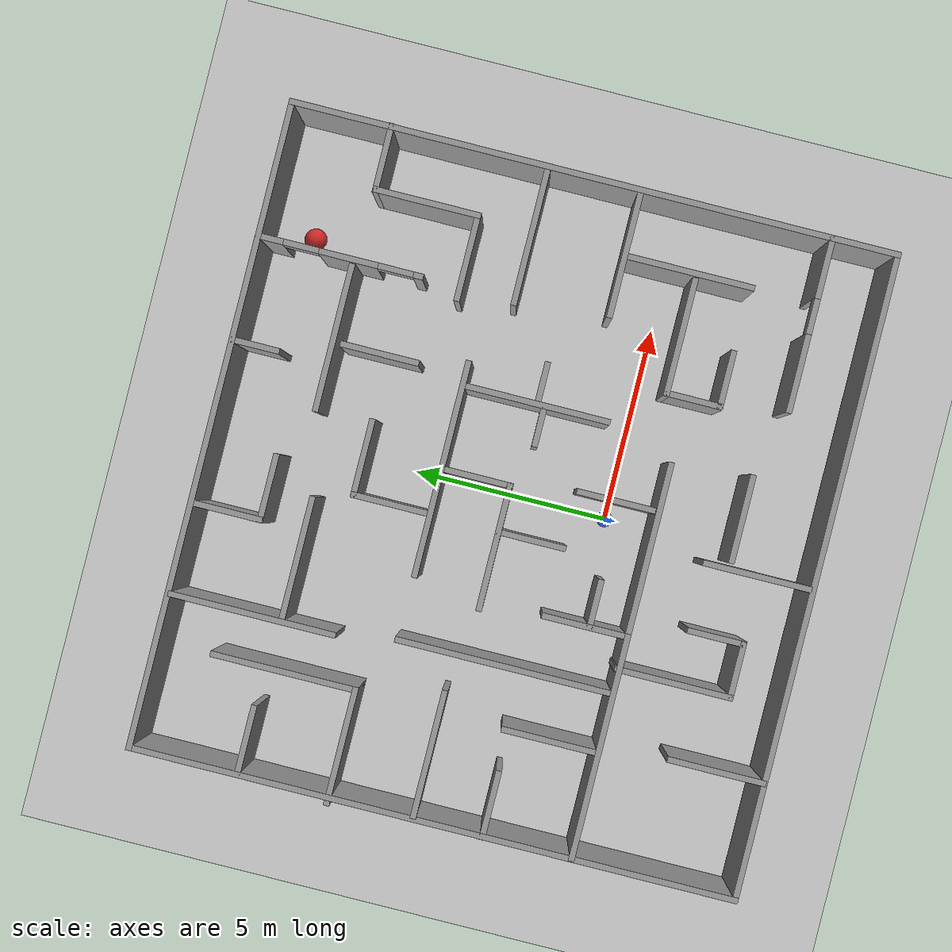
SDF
<sdf version="1.6">
 <world name="default">
  <light name="sun" type="directional">
   <pose>0 0 10 0 -0 0</pose>
   <diffuse>0.8 0.8 0.8 1</diffuse>
   <specular>0.2 0.2 0.2 1</specular>
   <attenuation>
    <range>1000</range>
    <constant>0.9</constant>
    <linear>0.01</linear>
    <quadratic>0.001</quadratic>
   </attenuation>
   <direction>-0.5 0.1 -0.9</direction>
  </light>
  <model name="ground_plane">
   <static>1</static>
   <link name="link">
    <collision name="collision">
     <geometry><plane><normal>0 0 1</normal><size>100 100</size></plane></geometry>
     <surface><friction><ode><mu>100</mu><mu2>50</mu2></ode></friction></surface>
    </collision>
    <visual name="visual">
     <cast_shadows>0</cast_shadows>
     <geometry><plane><normal>0 0 1</normal><size>100 100</size></plane></geometry>
     <material>
      <script><uri>file://media/materials/scripts/gazebo.material</uri><name>Gazebo/Grey</name></script>
     </material>
    </visual>
   </link>
  </model>
  <gravity>0 0 -9.8</gravity>
  <magnetic_field>6e-06 2.3e-05 -4.2e-05</magnetic_field>
  <atmosphere type="adiabatic"/>
  <physics name="default_physics" default="0" type="ode">
   <max_step_size>0.001</max_step_size>
   <real_time_factor>1</real_time_factor>
   <real_time_update_rate>1000</real_time_update_rate>
  </physics>
  <scene><ambient>0.4 0.4 0.4 1</ambient><background>0.7 0.7 0.7 1</background><shadows>1</shadows></scene>
  <audio><device>default</device></audio>
  <spherical_coordinates>
   <surface_model>EARTH_WGS84</surface_model>
   <latitude_deg>0</latitude_deg>
   <longitude_deg>0</longitude_deg>
   <elevation>0</elevation>
   <heading_deg>0</heading_deg>
  </spherical_coordinates>
  <model name="RoboCup SPL Ball">
   <static>0</static>
   <link name="ball">
    <inertial>
     <mass>0.0056</mass>
     <inertia>
      <ixx>2.37e-06</ixx>
      <iyy>2.37e-06</iyy>
      <izz>2.37e-06</izz>
      <ixy>0</ixy>
      <ixz>0</ixz>
      <iyz>0</iyz>
     </inertia>
    </inertial>
    <collision name="collision"><geometry><sphere><radius>0.289568</radius></sphere></geometry></collision>
    <visual name="visual">
     <geometry><sphere><radius>0.289568</radius></sphere></geometry>
     <material>
      <script><uri>file://media/materials/scripts/gazebo.material</uri><name>Gazebo/RedBright</name></script>
     </material>
    </visual>
   </link>
   <pose>5.15164 8.95935 0.289568 0 -0 0</pose>
  </model>
  <model name="mbot">
   <link name="base_footprint">
    <inertial>
     <pose>0.013077 0 0.138462 0 -0 0</pose>
     <mass>1.3</mass>
     <inertia>
      <ixx>0.0360561</ixx>
      <ixy>0</ixy>
      <ixz>-0.00121615</ixz>
      <iyy>0.0387238</iyy>
      <iyz>0</iyz>
      <izz>0.0426727</izz>
     </inertia>
    </inertial>
    <collision name="base_footprint_fixed_joint_lump__base_link_collision">
     <pose>0 0 0.11 0 -0 0</pose>
     <geometry><cylinder><length>0.16</length><radius>0.2</radius></cylinder></geometry>
    </collision>
    <collision name="base_footprint_fixed_joint_lump__camera_link_collision_1">
     <pose>0.17 0 0.21 0 -0 0</pose>
     <geometry><box><size>0.01 0.04 0.04</size></box></geometry>
    </collision>
    <collision name="base_footprint_fixed_joint_lump__pillar_link_collision_2">
     <pose>0 0 0.21 0 -0 0</pose>
     <geometry><cylinder><length>0.1</length><radius>0.01</radius></cylinder></geometry>
    </collision>
    <collision name="base_footprint_fixed_joint_lump__laser_link_collision_3">
     <pose>0 0 0.28 0 -0 0</pose>
     <geometry><cylinder><length>0.06</length><radius>0.05</radius></cylinder></geometry>
    </collision>
    <visual name="base_footprint_visual">
     <geometry><box><size>0.001 0.001 0.001</size></box></geometry>
     <material><script><uri>__default__</uri><name>__default__</name></script></material>
    </visual>
    <visual name="base_footprint_fixed_joint_lump__base_link_visual_1">
     <pose>0 0 0.11 0 -0 0</pose>
     <geometry><cylinder><length>0.16</length><radius>0.2</radius></cylinder></geometry>
     <material>
      <script><name>Gazebo/Blue</name><uri>file://media/materials/scripts/gazebo.material</uri></script>
     </material>
    </visual>
    <visual name="base_footprint_fixed_joint_lump__camera_link_visual_2">
     <pose>0.17 0 0.21 0 -0 0</pose>
     <geometry><box><size>0.01 0.04 0.04</size></box></geometry>
     <material>
      <script><name>Gazebo/Black</name><uri>file://media/materials/scripts/gazebo.material</uri></script>
     </material>
    </visual>
    <visual name="base_footprint_fixed_joint_lump__pillar_link_visual_3">
     <pose>0 0 0.21 0 -0 0</pose>
     <geometry><cylinder><length>0.1</length><radius>0.01</radius></cylinder></geometry>
    </visual>
    <visual name="base_footprint_fixed_joint_lump__laser_link_visual_4">
     <pose>0 0 0.28 0 -0 0</pose>
     <geometry><cylinder><length>0.05</length><radius>0.05</radius></cylinder></geometry>
     <material>
      <script><name>Gazebo/Black</name><uri>file://media/materials/scripts/gazebo.material</uri></script>
     </material>
    </visual>
    <sensor name="camera_node" type="camera">
     <update_rate>20</update_rate>
     <camera name="head">
      <horizontal_fov>1.39626</horizontal_fov>
      <image><width>1280</width><height>720</height><format>R8G8B8</format></image>
      <clip><near>0.02</near><far>300</far></clip>
      <noise><type>gaussian</type><mean>0</mean><stddev>0.007</stddev></noise>
     </camera>
     <plugin name="gazebo_camera" filename="libgazebo_ros_camera.so">
      <alwaysOn>1</alwaysOn>
      <updateRate>0.0</updateRate>
      <cameraName>/camera</cameraName>
      <imageTopicName>image_raw</imageTopicName>
      <cameraInfoTopicName>camera_info</cameraInfoTopicName>
      <frameName>camera_link</frameName>
      <hackBaseline>0.07</hackBaseline>
      <distortionK1>0.0</distortionK1>
      <distortionK2>0.0</distortionK2>
      <distortionK3>0.0</distortionK3>
      <distortionT1>0.0</distortionT1>
      <distortionT2>0.0</distortionT2>
      <robotNamespace>/</robotNamespace>
     </plugin>
     <pose>0.17 0 0.21 0 -0 0</pose>
    </sensor>
    <sensor name="rplidar" type="ray">
     <visualize>0</visualize>
     <update_rate>5.5</update_rate>
     <ray>
      <scan>
       <horizontal>
        <samples>360</samples>
        <resolution>1</resolution>
        <min_angle>-3</min_angle>
        <max_angle>3</max_angle>
       </horizontal>
       <vertical><samples>1</samples><min_angle>0</min_angle><max_angle>0</max_angle></vertical>
      </scan>
      <range><min>0.1</min><max>6</max><resolution>0.01</resolution></range>
      <noise><type>gaussian</type><mean>0</mean><stddev>0.01</stddev></noise>
     </ray>
     <plugin name="gazebo_rplidar" filename="libgazebo_ros_laser.so">
      <topicName>/scan</topicName>
      <frameName>laser_link</frameName>
      <robotNamespace>/</robotNamespace>
     </plugin>
     <pose>0 0 0.28 0 -0 0</pose>
    </sensor>
   </link>
   <link name="back_caster_link">
    <pose>0.18 0 0.015 0 -0 0</pose>
    <inertial>
     <mass>0.2</mass>
     <inertia><ixx>1.8e-05</ixx><ixy>0</ixy><ixz>0</ixz><iyy>1.8e-05</iyy><iyz>0</iyz><izz>1.8e-05</izz></inertia>
    </inertial>
    <collision name="back_caster_link_collision">
     <geometry><sphere><radius>0.015</radius></sphere></geometry>
    </collision>
    <visual name="back_caster_link_visual">
     <geometry><sphere><radius>0.015</radius></sphere></geometry>
     <material>
      <script><name>Gazebo/Black</name><uri>file://media/materials/scripts/gazebo.material</uri></script>
     </material>
    </visual>
   </link>
   <joint name="back_caster_joint" type="revolute">
    <child>back_caster_link</child>
    <parent>base_footprint</parent>
    <axis>
     <xyz>0 1 0</xyz>
     <limit><lower>-1e+16</lower><upper>1e+16</upper></limit>
     <dynamics><spring_reference>0</spring_reference><spring_stiffness>0</spring_stiffness></dynamics>
     <use_parent_model_frame>1</use_parent_model_frame>
    </axis>
   </joint>
   <link name="front_caster_link">
    <pose>-0.18 0 0.015 0 -0 0</pose>
    <inertial>
     <mass>0.2</mass>
     <inertia><ixx>1.8e-05</ixx><ixy>0</ixy><ixz>0</ixz><iyy>1.8e-05</iyy><iyz>0</iyz><izz>1.8e-05</izz></inertia>
    </inertial>
    <collision name="front_caster_link_collision">
     <geometry><sphere><radius>0.015</radius></sphere></geometry>
    </collision>
    <visual name="front_caster_link_visual">
     <geometry><sphere><radius>0.015</radius></sphere></geometry>
     <material>
      <script><name>Gazebo/Black</name><uri>file://media/materials/scripts/gazebo.material</uri></script>
     </material>
    </visual>
   </link>
   <joint name="front_caster_joint" type="revolute">
    <child>front_caster_link</child>
    <parent>base_footprint</parent>
    <axis>
     <xyz>0 1 0</xyz>
     <limit><lower>-1e+16</lower><upper>1e+16</upper></limit>
     <dynamics><spring_reference>0</spring_reference><spring_stiffness>0</spring_stiffness></dynamics>
     <use_parent_model_frame>1</use_parent_model_frame>
    </axis>
   </joint>
   <link name="left_wheel_link">
    <pose>0 0.19 0.06 0 -0 0</pose>
    <inertial>
     <mass>0.2</mass>
     <inertia>
      <ixx>0.000190417</ixx>
      <ixy>0</ixy>
      <ixz>0</ixz>
      <iyy>0.000190417</iyy>
      <iyz>0</iyz>
      <izz>0.00036</izz>
     </inertia>
    </inertial>
    <collision name="left_wheel_link_collision">
     <pose>0 0 0 1.5708 -0 0</pose>
     <geometry><cylinder><length>0.025</length><radius>0.06</radius></cylinder></geometry>
    </collision>
    <visual name="left_wheel_link_visual">
     <pose>0 0 0 1.5708 -0 0</pose>
     <geometry><cylinder><length>0.025</length><radius>0.06</radius></cylinder></geometry>
     <material>
      <script><name>Gazebo/Gray</name><uri>file://media/materials/scripts/gazebo.material</uri></script>
     </material>
    </visual>
   </link>
   <joint name="left_wheel_joint" type="revolute">
    <child>left_wheel_link</child>
    <parent>base_footprint</parent>
    <axis>
     <xyz>0 1 0</xyz>
     <limit><lower>-1e+16</lower><upper>1e+16</upper></limit>
     <dynamics><spring_reference>0</spring_reference><spring_stiffness>0</spring_stiffness></dynamics>
     <use_parent_model_frame>1</use_parent_model_frame>
    </axis>
   </joint>
   <link name="right_wheel_link">
    <pose>0 -0.19 0.06 0 -0 0</pose>
    <inertial>
     <mass>0.2</mass>
     <inertia>
      <ixx>0.000190417</ixx>
      <ixy>0</ixy>
      <ixz>0</ixz>
      <iyy>0.000190417</iyy>
      <iyz>0</iyz>
      <izz>0.00036</izz>
     </inertia>
    </inertial>
    <collision name="right_wheel_link_collision">
     <pose>0 0 0 1.5708 -0 0</pose>
     <geometry><cylinder><length>0.025</length><radius>0.06</radius></cylinder></geometry>
    </collision>
    <visual name="right_wheel_link_visual">
     <pose>0 0 0 1.5708 -0 0</pose>
     <geometry><cylinder><length>0.025</length><radius>0.06</radius></cylinder></geometry>
     <material>
      <script><name>Gazebo/Gray</name><uri>file://media/materials/scripts/gazebo.material</uri></script>
     </material>
    </visual>
   </link>
   <joint name="right_wheel_joint" type="revolute">
    <child>right_wheel_link</child>
    <parent>base_footprint</parent>
    <axis>
     <xyz>0 1 0</xyz>
     <limit><lower>-1e+16</lower><upper>1e+16</upper></limit>
     <dynamics><spring_reference>0</spring_reference><spring_stiffness>0</spring_stiffness></dynamics>
     <use_parent_model_frame>1</use_parent_model_frame>
    </axis>
   </joint>
   <static>0</static>
   <plugin name="differential_drive_controller" filename="libgazebo_ros_diff_drive.so">
    <rosDebugLevel>Debug</rosDebugLevel>
    <publishWheelTF>1</publishWheelTF>
    <robotNamespace>/</robotNamespace>
    <publishTf>1</publishTf>
    <publishWheelJointState>1</publishWheelJointState>
    <alwaysOn>1</alwaysOn>
    <updateRate>100.0</updateRate>
    <legacyMode>1</legacyMode>
    <leftJoint>left_wheel_joint</leftJoint>
    <rightJoint>right_wheel_joint</rightJoint>
    <wheelSeparation>0.38</wheelSeparation>
    <wheelDiameter>0.12</wheelDiameter>
    <broadcastTF>1</broadcastTF>
    <wheelTorque>30</wheelTorque>
    <wheelAcceleration>1.8</wheelAcceleration>
    <commandTopic>cmd_vel</commandTopic>
    <odometryFrame>odom</odometryFrame>
    <odometryTopic>odom</odometryTopic>
    <robotBaseFrame>base_footprint</robotBaseFrame>
   </plugin>
   <pose>0.00606 0.006596 0 -1e-06 -0 0.002871</pose>
  </model>
  <model name="maze">
   <pose>-0.169978 2.39175 0 0 -0 0</pose>
   <link name="Wall_10">
    <collision name="Wall_10_Collision">
     <geometry><box><size>15.5 0.15 2.5</size></box></geometry>
     <pose>0 0 1.25 0 -0 0</pose>
    </collision>
    <visual name="Wall_10_Visual">
     <pose>0 0 1.25 0 -0 0</pose>
     <geometry><box><size>15.5 0.15 2.5</size></box></geometry>
     <material>
      <script><uri>file://media/materials/scripts/gazebo.material</uri><name>Gazebo/Grey</name></script>
      <ambient>1 1 1 1</ambient>
     </material>
     <meta><layer>0</layer></meta>
    </visual>
    <pose>8.23201 0 0 0 -0 1.5708</pose>
   </link>
   <link name="Wall_100">
    <collision name="Wall_100_Collision">
     <geometry><box><size>1 0.15 2.5</size></box></geometry>
     <pose>0 0 1.25 0 -0 0</pose>
    </collision>
    <visual name="Wall_100_Visual">
     <pose>0 0 1.25 0 -0 0</pose>
     <geometry><box><size>1 0.15 2.5</size></box></geometry>
     <material>
      <script><uri>file://media/materials/scripts/gazebo.material</uri><name>Gazebo/Grey</name></script>
      <ambient>1 1 1 1</ambient>
     </material>
     <meta><layer>0</layer></meta>
    </visual>
    <pose>3.0779 0.015694 0 0 -0 3.14159</pose>
   </link>
   <link name="Wall_102">
    <collision name="Wall_102_Collision">
     <geometry><box><size>1.75 0.15 2.5</size></box></geometry>
     <pose>0 0 1.25 0 -0 0</pose>
    </collision>
    <visual name="Wall_102_Visual">
     <pose>0 0 1.25 0 -0 0</pose>
     <geometry><box><size>1.75 0.15 2.5</size></box></geometry>
     <material>
      <script><uri>file://media/materials/scripts/gazebo.material</uri><name>Gazebo/Grey</name></script>
      <ambient>1 1 1 1</ambient>
     </material>
     <meta><layer>0</layer></meta>
    </visual>
    <pose>-7.32587 -1.27639 0 0 -0 0</pose>
   </link>
   <link name="Wall_104">
    <collision name="Wall_104_Collision">
     <geometry><box><size>2 0.15 2.5</size></box></geometry>
     <pose>0 0 1.25 0 -0 0</pose>
    </collision>
    <visual name="Wall_104_Visual">
     <pose>0 0 1.25 0 -0 0</pose>
     <geometry><box><size>2 0.15 2.5</size></box></geometry>
     <material>
      <script><uri>file://media/materials/scripts/gazebo.material</uri><name>Gazebo/Grey</name></script>
      <ambient>1 1 1 1</ambient>
     </material>
     <meta><layer>0</layer></meta>
    </visual>
    <pose>0.672614 -2.4475 0 0 -0 -1.5708</pose>
   </link>
   <link name="Wall_106">
    <collision name="Wall_106_Collision">
     <geometry><box><size>1 0.15 2.5</size></box></geometry>
     <pose>0 0 1.25 0 -0 0</pose>
    </collision>
    <visual name="Wall_106_Visual">
     <pose>0 0 1.25 0 -0 0</pose>
     <geometry><box><size>1 0.15 2.5</size></box></geometry>
     <material>
      <script><uri>file://media/materials/scripts/gazebo.material</uri><name>Gazebo/Grey</name></script>
      <ambient>1 1 1 1</ambient>
     </material>
     <meta><layer>0</layer></meta>
    </visual>
    <pose>1.97039 -0.168889 0 0 -0 3.14159</pose>
   </link>
   <link name="Wall_12">
    <collision name="Wall_12_Collision">
     <geometry><box><size>5.75 0.15 2.5</size></box></geometry>
     <pose>0 0 1.25 0 -0 0</pose>
    </collision>
    <visual name="Wall_12_Visual">
     <pose>0 0 1.25 0 -0 0</pose>
     <geometry><box><size>5.75 0.15 2.5</size></box></geometry>
     <material>
      <script><uri>file://media/materials/scripts/gazebo.material</uri><name>Gazebo/Grey</name></script>
      <ambient>1 1 1 1</ambient>
     </material>
     <meta><layer>0</layer></meta>
    </visual>
    <pose>-5.29534 -3.53435 0 0 -0 0</pose>
   </link>
   <link name="Wall_14">
    <pose>4.84302 5.61866 0 0 -0 -1.5708</pose>
    <visual name="Wall_14_Visual_0">
     <pose>-1.77183 0 1.25 0 -0 0</pose>
     <geometry><box><size>0.70634 0.15 2.5</size></box></geometry>
     <material>
      <script><uri>file://media/materials/scripts/gazebo.material</uri><name>Gazebo/Grey</name></script>
      <ambient>1 1 1 1</ambient>
     </material>
     <meta><layer>0</layer></meta>
    </visual>
    <collision name="Wall_14_Collision_0">
     <geometry><box><size>0.70634 0.15 2.5</size></box></geometry>
     <pose>-1.77183 0 1.25 0 -0 0</pose>
    </collision>
    <visual name="Wall_14_Visual_1">
     <pose>0.229578 0 1.25 0 -0 0</pose>
     <geometry><box><size>1.49648 0.15 2.5</size></box></geometry>
     <material>
      <script><uri>file://media/materials/scripts/gazebo.material</uri><name>Gazebo/Grey</name></script>
      <ambient>1 1 1 1</ambient>
     </material>
     <meta><layer>0</layer></meta>
    </visual>
    <collision name="Wall_14_Collision_1">
     <geometry><box><size>1.49648 0.15 2.5</size></box></geometry>
     <pose>0.229578 0 1.25 0 -0 0</pose>
    </collision>
    <visual name="Wall_14_Visual_2">
     <pose>2.00141 0 1.25 0 -0 0</pose>
     <geometry><box><size>0.247184 0.15 2.5</size></box></geometry>
     <material>
      <script><uri>file://media/materials/scripts/gazebo.material</uri><name>Gazebo/Grey</name></script>
      <ambient>1 1 1 1</ambient>
     </material>
     <meta><layer>0</layer></meta>
    </visual>
    <collision name="Wall_14_Collision_2">
     <geometry><box><size>0.247184 0.15 2.5</size></box></geometry>
     <pose>2.00141 0 1.25 0 -0 0</pose>
    </collision>
    <visual name="Wall_14_Visual_3">
     <pose>-0.96866 0 2.25 0 -0 0</pose>
     <geometry><box><size>0.9 0.15 0.5</size></box></geometry>
     <material>
      <script><uri>file://media/materials/scripts/gazebo.material</uri><name>Gazebo/Grey</name></script>
      <ambient>1 1 1 1</ambient>
     </material>
     <meta><layer>0</layer></meta>
    </visual>
    <collision name="Wall_14_Collision_3">
     <geometry><box><size>0.9 0.15 0.5</size></box></geometry>
     <pose>-0.96866 0 2.25 0 -0 0</pose>
    </collision>
    <visual name="Wall_14_Visual_4">
     <pose>1.42782 0 2.25 0 -0 0</pose>
     <geometry><box><size>0.9 0.15 0.5</size></box></geometry>
     <material>
      <script><uri>file://media/materials/scripts/gazebo.material</uri><name>Gazebo/Grey</name></script>
      <ambient>1 1 1 1</ambient>
     </material>
     <meta><layer>0</layer></meta>
    </visual>
    <collision name="Wall_14_Collision_4">
     <geometry><box><size>0.9 0.15 0.5</size></box></geometry>
     <pose>1.42782 0 2.25 0 -0 0</pose>
    </collision>
   </link>
   <link name="Wall_16">
    <collision name="Wall_16_Collision">
     <geometry><box><size>3.25 0.15 2.5</size></box></geometry>
     <pose>0 0 1.25 0 -0 0</pose>
    </collision>
    <visual name="Wall_16_Visual">
     <pose>0 0 1.25 0 -0 0</pose>
     <geometry><box><size>3.25 0.15 2.5</size></box></geometry>
     <material>
      <script><uri>file://media/materials/scripts/gazebo.material</uri><name>Gazebo/Grey</name></script>
      <ambient>1 1 1 1</ambient>
     </material>
     <meta><layer>0</layer></meta>
    </visual>
    <pose>6.6186 -1.17597 0 0 -0 3.14159</pose>
   </link>
   <link name="Wall_18">
    <collision name="Wall_18_Collision">
     <geometry><box><size>4.25 0.15 2.5</size></box></geometry>
     <pose>0 0 1.25 0 -0 0</pose>
    </collision>
    <visual name="Wall_18_Visual">
     <pose>0 0 1.25 0 -0 0</pose>
     <geometry><box><size>4.25 0.15 2.5</size></box></geometry>
     <material>
      <script><uri>file://media/materials/scripts/gazebo.material</uri><name>Gazebo/Grey</name></script>
      <ambient>1 1 1 1</ambient>
     </material>
     <meta><layer>0</layer></meta>
    </visual>
    <pose>-4.21389 5.5479 0 0 -0 -1.5708</pose>
   </link>
   <link name="Wall_23">
    <collision name="Wall_23_Collision">
     <geometry><box><size>1.75 0.15 2.5</size></box></geometry>
     <pose>0 0 1.25 0 -0 0</pose>
    </collision>
    <visual name="Wall_23_Visual">
     <pose>0 0 1.25 0 -0 0</pose>
     <geometry><box><size>1.75 0.15 2.5</size></box></geometry>
     <material>
      <script><uri>file://media/materials/scripts/gazebo.material</uri><name>Gazebo/Grey</name></script>
      <ambient>1 1 1 1</ambient>
     </material>
     <meta><layer>0</layer></meta>
    </visual>
    <pose>-7.2358 4.94106 0 0 -0 0</pose>
   </link>
   <link name="Wall_26">
    <collision name="Wall_26_Collision">
     <geometry><box><size>3.25 0.15 2.5</size></box></geometry>
     <pose>0 0 1.25 0 -0 0</pose>
    </collision>
    <visual name="Wall_26_Visual">
     <pose>0 0 1.25 0 -0 0</pose>
     <geometry><box><size>3.25 0.15 2.5</size></box></geometry>
     <material>
      <script><uri>file://media/materials/scripts/gazebo.material</uri><name>Gazebo/Grey</name></script>
      <ambient>1 1 1 1</ambient>
     </material>
     <meta><layer>0</layer></meta>
    </visual>
    <pose>-6.4858 0.490946 0 0 -0 0</pose>
   </link>
   <link name="Wall_28">
    <collision name="Wall_28_Collision">
     <geometry><box><size>3.75 0.15 2.5</size></box></geometry>
     <pose>0 0 1.25 0 -0 0</pose>
    </collision>
    <visual name="Wall_28_Visual">
     <pose>0 0 1.25 0 -0 0</pose>
     <geometry><box><size>3.75 0.15 2.5</size></box></geometry>
     <material>
      <script><uri>file://media/materials/scripts/gazebo.material</uri><name>Gazebo/Grey</name></script>
      <ambient>1 1 1 1</ambient>
     </material>
     <meta><layer>0</layer></meta>
    </visual>
    <pose>2.86725 5.2647 0 0 -0 3.14159</pose>
   </link>
   <link name="Wall_30">
    <collision name="Wall_30_Collision">
     <geometry><box><size>3.25 0.15 2.5</size></box></geometry>
     <pose>0 0 1.25 0 -0 0</pose>
    </collision>
    <visual name="Wall_30_Visual">
     <pose>0 0 1.25 0 -0 0</pose>
     <geometry><box><size>3.25 0.15 2.5</size></box></geometry>
     <material>
      <script><uri>file://media/materials/scripts/gazebo.material</uri><name>Gazebo/Grey</name></script>
      <ambient>1 1 1 1</ambient>
     </material>
     <meta><layer>0</layer></meta>
    </visual>
    <pose>6.56867 -2.8391 0 0 -0 -1.5708</pose>
   </link>
   <link name="Wall_32">
    <collision name="Wall_32_Collision">
     <geometry><box><size>2.5 0.15 2.5</size></box></geometry>
     <pose>0 0 1.25 0 -0 0</pose>
    </collision>
    <visual name="Wall_32_Visual">
     <pose>0 0 1.25 0 -0 0</pose>
     <geometry><box><size>2.5 0.15 2.5</size></box></geometry>
     <material>
      <script><uri>file://media/materials/scripts/gazebo.material</uri><name>Gazebo/Grey</name></script>
      <ambient>1 1 1 1</ambient>
     </material>
     <meta><layer>0</layer></meta>
    </visual>
    <pose>-5.16345 -6.46563 0 0 -0 1.5708</pose>
   </link>
   <link name="Wall_34">
    <pose>6.05234 -6.0224 0 0 -0 3.14159</pose>
    <visual name="Wall_34_Visual_0">
     <pose>-1.44843 0 1.25 0 -0 0</pose>
     <geometry><box><size>1.60315 0.15 2.5</size></box></geometry>
     <material>
      <script><uri>file://media/materials/scripts/gazebo.material</uri><name>Gazebo/Grey</name></script>
      <ambient>1 1 1 1</ambient>
     </material>
     <meta><layer>0</layer></meta>
    </visual>
    <collision name="Wall_34_Collision_0">
     <geometry><box><size>1.60315 0.15 2.5</size></box></geometry>
     <pose>-1.44843 0 1.25 0 -0 0</pose>
    </collision>
    <visual name="Wall_34_Visual_1">
     <pose>1.25157 0 1.25 0 -0 0</pose>
     <geometry><box><size>1.99686 0.15 2.5</size></box></geometry>
     <material>
      <script><uri>file://media/materials/scripts/gazebo.material</uri><name>Gazebo/Grey</name></script>
      <ambient>1 1 1 1</ambient>
     </material>
     <meta><layer>0</layer></meta>
    </visual>
    <collision name="Wall_34_Collision_1">
     <geometry><box><size>1.99686 0.15 2.5</size></box></geometry>
     <pose>1.25157 0 1.25 0 -0 0</pose>
    </collision>
    <visual name="Wall_34_Visual_2">
     <pose>-0.196855 0 2.25 0 -0 0</pose>
     <geometry><box><size>0.9 0.15 0.5</size></box></geometry>
     <material>
      <script><uri>file://media/materials/scripts/gazebo.material</uri><name>Gazebo/Grey</name></script>
      <ambient>1 1 1 1</ambient>
     </material>
     <meta><layer>0</layer></meta>
    </visual>
    <collision name="Wall_34_Collision_2">
     <geometry><box><size>0.9 0.15 0.5</size></box></geometry>
     <pose>-0.196855 0 2.25 0 -0 0</pose>
    </collision>
   </link>
   <link name="Wall_36">
    <collision name="Wall_36_Collision">
     <geometry><box><size>2.75 0.15 2.5</size></box></geometry>
     <pose>0 0 1.25 0 -0 0</pose>
    </collision>
    <visual name="Wall_36_Visual">
     <pose>0 0 1.25 0 -0 0</pose>
     <geometry><box><size>2.75 0.15 2.5</size></box></geometry>
     <material>
      <script><uri>file://media/materials/scripts/gazebo.material</uri><name>Gazebo/Grey</name></script>
      <ambient>1 1 1 1</ambient>
     </material>
     <meta><layer>0</layer></meta>
    </visual>
    <pose>-0.268326 -6.25971 0 0 -0 1.5708</pose>
   </link>
   <link name="Wall_38">
    <collision name="Wall_38_Collision">
     <geometry><box><size>5.5 0.15 2.5</size></box></geometry>
     <pose>0 0 1.25 0 -0 0</pose>
    </collision>
    <visual name="Wall_38_Visual">
     <pose>0 0 1.25 0 -0 0</pose>
     <geometry><box><size>5.5 0.15 2.5</size></box></geometry>
     <material>
      <script><uri>file://media/materials/scripts/gazebo.material</uri><name>Gazebo/Grey</name></script>
      <ambient>1 1 1 1</ambient>
     </material>
     <meta><layer>0</layer></meta>
    </visual>
    <pose>0.383895 1.90689 0 0 -0 0</pose>
   </link>
   <link name="Wall_42">
    <collision name="Wall_42_Collision">
     <geometry><box><size>1.75 0.15 2.5</size></box></geometry>
     <pose>0 0 1.25 0 -0 0</pose>
    </collision>
    <visual name="Wall_42_Visual">
     <pose>0 0 1.25 0 -0 0</pose>
     <geometry><box><size>1.75 0.15 2.5</size></box></geometry>
     <material>
      <script><uri>file://media/materials/scripts/gazebo.material</uri><name>Gazebo/Grey</name></script>
      <ambient>1 1 1 1</ambient>
     </material>
     <meta><layer>0</layer></meta>
    </visual>
    <pose>0.398429 0.974712 0 0 -0 -1.5708</pose>
   </link>
   <link name="Wall_43">
    <collision name="Wall_43_Collision">
     <geometry><box><size>3.25 0.15 2.5</size></box></geometry>
     <pose>0 0 1.25 0 -0 0</pose>
    </collision>
    <visual name="Wall_43_Visual">
     <pose>0 0 1.25 0 -0 0</pose>
     <geometry><box><size>3.25 0.15 2.5</size></box></geometry>
     <material>
      <script><uri>file://media/materials/scripts/gazebo.material</uri><name>Gazebo/Grey</name></script>
      <ambient>1 1 1 1</ambient>
     </material>
     <meta><layer>0</layer></meta>
    </visual>
    <pose>-1.15157 0.174712 0 0 -0 3.14159</pose>
   </link>
   <link name="Wall_45">
    <collision name="Wall_45_Collision">
     <geometry><box><size>2.25 0.15 2.5</size></box></geometry>
     <pose>0 0 1.25 0 -0 0</pose>
    </collision>
    <visual name="Wall_45_Visual">
     <pose>0 0 1.25 0 -0 0</pose>
     <geometry><box><size>2.25 0.15 2.5</size></box></geometry>
     <material>
      <script><uri>file://media/materials/scripts/gazebo.material</uri><name>Gazebo/Grey</name></script>
      <ambient>1 1 1 1</ambient>
     </material>
     <meta><layer>0</layer></meta>
    </visual>
    <pose>-2.49534 -2.48435 0 0 -0 1.5708</pose>
   </link>
   <link name="Wall_47">
    <collision name="Wall_47_Collision">
     <geometry><box><size>4.5 0.15 2.5</size></box></geometry>
     <pose>0 0 1.25 0 -0 0</pose>
    </collision>
    <visual name="Wall_47_Visual">
     <pose>0 0 1.25 0 -0 0</pose>
     <geometry><box><size>4.5 0.15 2.5</size></box></geometry>
     <material>
      <script><uri>file://media/materials/scripts/gazebo.material</uri><name>Gazebo/Grey</name></script>
      <ambient>1 1 1 1</ambient>
     </material>
     <meta><layer>0</layer></meta>
    </visual>
    <pose>-0.320341 -3.53435 0 0 -0 0</pose>
   </link>
   <link name="Wall_49">
    <collision name="Wall_49_Collision">
     <geometry><box><size>3.75 0.15 2.5</size></box></geometry>
     <pose>0 0 1.25 0 -0 0</pose>
    </collision>
    <visual name="Wall_49_Visual">
     <pose>0 0 1.25 0 -0 0</pose>
     <geometry><box><size>3.75 0.15 2.5</size></box></geometry>
     <material>
      <script><uri>file://media/materials/scripts/gazebo.material</uri><name>Gazebo/Grey</name></script>
      <ambient>1 1 1 1</ambient>
     </material>
     <meta><layer>0</layer></meta>
    </visual>
    <pose>2.50915 0.045069 0 0 -0 -1.5708</pose>
   </link>
   <link name="Wall_51">
    <collision name="Wall_51_Collision">
     <geometry><box><size>2.5 0.15 2.5</size></box></geometry>
     <pose>0 0 1.25 0 -0 0</pose>
    </collision>
    <visual name="Wall_51_Visual">
     <pose>0 0 1.25 0 -0 0</pose>
     <geometry><box><size>2.5 0.15 2.5</size></box></geometry>
     <material>
      <script><uri>file://media/materials/scripts/gazebo.material</uri><name>Gazebo/Grey</name></script>
      <ambient>1 1 1 1</ambient>
     </material>
     <meta><layer>0</layer></meta>
    </visual>
    <pose>-5.44125 -2.3271 0 0 -0 1.5708</pose>
   </link>
   <link name="Wall_55">
    <collision name="Wall_55_Collision">
     <geometry><box><size>3.25 0.15 2.5</size></box></geometry>
     <pose>0 0 1.25 0 -0 0</pose>
    </collision>
    <visual name="Wall_55_Visual">
     <pose>0 0 1.25 0 -0 0</pose>
     <geometry><box><size>3.25 0.15 2.5</size></box></geometry>
     <material>
      <script><uri>file://media/materials/scripts/gazebo.material</uri><name>Gazebo/Grey</name></script>
      <ambient>1 1 1 1</ambient>
     </material>
     <meta><layer>0</layer></meta>
    </visual>
    <pose>-2.65553 4.80704 0 0 -0 0</pose>
   </link>
   <link name="Wall_58">
    <collision name="Wall_58_Collision">
     <geometry><box><size>3.5 0.15 2.5</size></box></geometry>
     <pose>0 0 1.25 0 -0 0</pose>
    </collision>
    <visual name="Wall_58_Visual">
     <pose>0 0 1.25 0 -0 0</pose>
     <geometry><box><size>3.5 0.15 2.5</size></box></geometry>
     <material>
      <script><uri>file://media/materials/scripts/gazebo.material</uri><name>Gazebo/Grey</name></script>
      <ambient>1 1 1 1</ambient>
     </material>
     <meta><layer>0</layer></meta>
    </visual>
    <pose>6.46456 1.18025 0 0 -0 3.14159</pose>
   </link>
   <link name="Wall_6">
    <collision name="Wall_6_Collision">
     <geometry><box><size>16.5 0.15 2.5</size></box></geometry>
     <pose>0 0 1.25 0 -0 0</pose>
    </collision>
    <visual name="Wall_6_Visual">
     <pose>0 0 1.25 0 -0 0</pose>
     <geometry><box><size>16.5 0.15 2.5</size></box></geometry>
     <material>
      <script><uri>file://media/materials/scripts/gazebo.material</uri><name>Gazebo/Grey</name></script>
      <ambient>1 1 1 1</ambient>
     </material>
     <meta><layer>0</layer></meta>
    </visual>
    <pose>0.057011 7.675 0 0 -0 0</pose>
   </link>
   <link name="Wall_60">
    <collision name="Wall_60_Collision">
     <geometry><box><size>1.75 0.15 2.5</size></box></geometry>
     <pose>0 0 1.25 0 -0 0</pose>
    </collision>
    <visual name="Wall_60_Visual">
     <pose>0 0 1.25 0 -0 0</pose>
     <geometry><box><size>1.75 0.15 2.5</size></box></geometry>
     <material>
      <script><uri>file://media/materials/scripts/gazebo.material</uri><name>Gazebo/Grey</name></script>
      <ambient>1 1 1 1</ambient>
     </material>
     <meta><layer>0</layer></meta>
    </visual>
    <pose>-0.766948 -0.660227 0 0 -0 -1.5708</pose>
   </link>
   <link name="Wall_62">
    <collision name="Wall_62_Collision">
     <geometry><box><size>1.25 0.15 2.5</size></box></geometry>
     <pose>0 0 1.25 0 -0 0</pose>
    </collision>
    <visual name="Wall_62_Visual">
     <pose>0 0 1.25 0 -0 0</pose>
     <geometry><box><size>1.25 0.15 2.5</size></box></geometry>
     <material>
      <script><uri>file://media/materials/scripts/gazebo.material</uri><name>Gazebo/Grey</name></script>
      <ambient>1 1 1 1</ambient>
     </material>
     <meta><layer>0</layer></meta>
    </visual>
    <pose>-1.90553 -2.56899 0 0 -0 0</pose>
   </link>
   <link name="Wall_66">
    <collision name="Wall_66_Collision">
     <geometry><box><size>2 0.15 2.5</size></box></geometry>
     <pose>0 0 1.25 0 -0 0</pose>
    </collision>
    <visual name="Wall_66_Visual">
     <pose>0 0 1.25 0 -0 0</pose>
     <geometry><box><size>2 0.15 2.5</size></box></geometry>
     <material>
      <script><uri>file://media/materials/scripts/gazebo.material</uri><name>Gazebo/Grey</name></script>
      <ambient>1 1 1 1</ambient>
     </material>
     <meta><layer>0</layer></meta>
    </visual>
    <pose>-0.754728 2.92274 0 0 -0 1.5708</pose>
   </link>
   <link name="Wall_67">
    <collision name="Wall_67_Collision">
     <geometry><box><size>2 0.15 2.5</size></box></geometry>
     <pose>0 0 1.25 0 -0 0</pose>
    </collision>
    <visual name="Wall_67_Visual">
     <pose>0 0 1.25 0 -0 0</pose>
     <geometry><box><size>2 0.15 2.5</size></box></geometry>
     <material>
      <script><uri>file://media/materials/scripts/gazebo.material</uri><name>Gazebo/Grey</name></script>
      <ambient>1 1 1 1</ambient>
     </material>
     <meta><layer>0</layer></meta>
    </visual>
    <pose>0.170272 3.84774 0 0 -0 0</pose>
   </link>
   <link name="Wall_70">
    <collision name="Wall_70_Collision">
     <geometry><box><size>3 0.15 2.5</size></box></geometry>
     <pose>0 0 1.25 0 -0 0</pose>
    </collision>
    <visual name="Wall_70_Visual">
     <pose>0 0 1.25 0 -0 0</pose>
     <geometry><box><size>3 0.15 2.5</size></box></geometry>
     <material>
      <script><uri>file://media/materials/scripts/gazebo.material</uri><name>Gazebo/Grey</name></script>
      <ambient>1 1 1 1</ambient>
     </material>
     <meta><layer>0</layer></meta>
    </visual>
    <pose>-3.32278 -4.91515 0 0 -0 -1.5708</pose>
   </link>
   <link name="Wall_73">
    <collision name="Wall_73_Collision">
     <geometry><box><size>2.25 0.15 2.5</size></box></geometry>
     <pose>0 0 1.25 0 -0 0</pose>
    </collision>
    <visual name="Wall_73_Visual">
     <pose>0 0 1.25 0 -0 0</pose>
     <geometry><box><size>2.25 0.15 2.5</size></box></geometry>
     <material>
      <script><uri>file://media/materials/scripts/gazebo.material</uri><name>Gazebo/Grey</name></script>
      <ambient>1 1 1 1</ambient>
     </material>
     <meta><layer>0</layer></meta>
    </visual>
    <pose>1.00181 -5.55895 0 0 -0 0</pose>
   </link>
   <link name="Wall_75">
    <collision name="Wall_75_Collision">
     <geometry><box><size>1.75 0.15 2.5</size></box></geometry>
     <pose>0 0 1.25 0 -0 0</pose>
    </collision>
    <visual name="Wall_75_Visual">
     <pose>0 0 1.25 0 -0 0</pose>
     <geometry><box><size>1.75 0.15 2.5</size></box></geometry>
     <material>
      <script><uri>file://media/materials/scripts/gazebo.material</uri><name>Gazebo/Grey</name></script>
      <ambient>1 1 1 1</ambient>
     </material>
     <meta><layer>0</layer></meta>
    </visual>
    <pose>7.4452 5.16178 0 0 -0 3.14159</pose>
   </link>
   <link name="Wall_76">
    <collision name="Wall_76_Collision">
     <geometry><box><size>2.75 0.15 2.5</size></box></geometry>
     <pose>0 0 1.25 0 -0 0</pose>
    </collision>
    <visual name="Wall_76_Visual">
     <pose>0 0 1.25 0 -0 0</pose>
     <geometry><box><size>2.75 0.15 2.5</size></box></geometry>
     <material>
      <script><uri>file://media/materials/scripts/gazebo.material</uri><name>Gazebo/Grey</name></script>
      <ambient>1 1 1 1</ambient>
     </material>
     <meta><layer>0</layer></meta>
    </visual>
    <pose>6.6452 3.86178 0 0 -0 -1.5708</pose>
   </link>
   <link name="Wall_77">
    <collision name="Wall_77_Collision">
     <geometry><box><size>2.25 0.15 2.5</size></box></geometry>
     <pose>0 0 1.25 0 -0 0</pose>
    </collision>
    <visual name="Wall_77_Visual">
     <pose>0 0 1.25 0 -0 0</pose>
     <geometry><box><size>2.25 0.15 2.5</size></box></geometry>
     <material>
      <script><uri>file://media/materials/scripts/gazebo.material</uri><name>Gazebo/Grey</name></script>
      <ambient>1 1 1 1</ambient>
     </material>
     <meta><layer>0</layer></meta>
    </visual>
    <pose>5.5952 2.56178 0 0 -0 3.14159</pose>
   </link>
   <link name="Wall_8">
    <collision name="Wall_8_Collision">
     <geometry><box><size>15.5 0.15 2.5</size></box></geometry>
     <pose>0 0 1.25 0 -0 0</pose>
    </collision>
    <visual name="Wall_8_Visual">
     <pose>0 0 1.25 0 -0 0</pose>
     <geometry><box><size>15.5 0.15 2.5</size></box></geometry>
     <material>
      <script><uri>file://media/materials/scripts/gazebo.material</uri><name>Gazebo/Grey</name></script>
      <ambient>1 1 1 1</ambient>
     </material>
     <meta><layer>0</layer></meta>
    </visual>
    <pose>-8.11799 0 0 0 -0 -1.5708</pose>
   </link>
   <link name="Wall_80">
    <collision name="Wall_80_Collision">
     <geometry><box><size>3 0.15 2.5</size></box></geometry>
     <pose>0 0 1.25 0 -0 0</pose>
    </collision>
    <visual name="Wall_80_Visual">
     <pose>0 0 1.25 0 -0 0</pose>
     <geometry><box><size>3 0.15 2.5</size></box></geometry>
     <material>
      <script><uri>file://media/materials/scripts/gazebo.material</uri><name>Gazebo/Grey</name></script>
      <ambient>1 1 1 1</ambient>
     </material>
     <meta><layer>0</layer></meta>
    </visual>
    <pose>-6.8202 2.63279 0 0 -0 0</pose>
   </link>
   <link name="Wall_81">
    <collision name="Wall_81_Collision">
     <geometry><box><size>3.75 0.15 2.5</size></box></geometry>
     <pose>0 0 1.25 0 -0 0</pose>
    </collision>
    <visual name="Wall_81_Visual">
     <pose>0 0 1.25 0 -0 0</pose>
     <geometry><box><size>3.75 0.15 2.5</size></box></geometry>
     <material>
      <script><uri>file://media/materials/scripts/gazebo.material</uri><name>Gazebo/Grey</name></script>
      <ambient>1 1 1 1</ambient>
     </material>
     <meta><layer>0</layer></meta>
    </visual>
    <pose>-5.3952 4.43279 0 0 -0 1.5708</pose>
   </link>
   <link name="Wall_83">
    <collision name="Wall_83_Collision">
     <geometry><box><size>3 0.15 2.5</size></box></geometry>
     <pose>0 0 1.25 0 -0 0</pose>
    </collision>
    <visual name="Wall_83_Visual">
     <pose>0 0 1.25 0 -0 0</pose>
     <geometry><box><size>3 0.15 2.5</size></box></geometry>
     <material>
      <script><uri>file://media/materials/scripts/gazebo.material</uri><name>Gazebo/Grey</name></script>
      <ambient>1 1 1 1</ambient>
     </material>
     <meta><layer>0</layer></meta>
    </visual>
    <pose>4.96971 -2.99917 0 0 -0 3.14159</pose>
   </link>
   <link name="Wall_84">
    <collision name="Wall_84_Collision">
     <geometry><box><size>1.5 0.15 2.5</size></box></geometry>
     <pose>0 0 1.25 0 -0 0</pose>
    </collision>
    <visual name="Wall_84_Visual">
     <pose>0 0 1.25 0 -0 0</pose>
     <geometry><box><size>1.5 0.15 2.5</size></box></geometry>
     <material>
      <script><uri>file://media/materials/scripts/gazebo.material</uri><name>Gazebo/Grey</name></script>
      <ambient>1 1 1 1</ambient>
     </material>
     <meta><layer>0</layer></meta>
    </visual>
    <pose>3.54471 -3.67417 0 0 -0 -1.5708</pose>
   </link>
   <link name="Wall_85">
    <collision name="Wall_85_Collision">
     <geometry><box><size>1.5 0.15 2.5</size></box></geometry>
     <pose>0 0 1.25 0 -0 0</pose>
    </collision>
    <visual name="Wall_85_Visual">
     <pose>0 0 1.25 0 -0 0</pose>
     <geometry><box><size>1.5 0.15 2.5</size></box></geometry>
     <material>
      <script><uri>file://media/materials/scripts/gazebo.material</uri><name>Gazebo/Grey</name></script>
      <ambient>1 1 1 1</ambient>
     </material>
     <meta><layer>0</layer></meta>
    </visual>
    <pose>4.21971 -4.34917 0 0 -0 0</pose>
   </link>
   <link name="Wall_87">
    <collision name="Wall_87_Collision">
     <geometry><box><size>1.5 0.15 2.5</size></box></geometry>
     <pose>0 0 1.25 0 -0 0</pose>
    </collision>
    <visual name="Wall_87_Visual">
     <pose>0 0 1.25 0 -0 0</pose>
     <geometry><box><size>1.5 0.15 2.5</size></box></geometry>
     <material>
      <script><uri>file://media/materials/scripts/gazebo.material</uri><name>Gazebo/Grey</name></script>
      <ambient>1 1 1 1</ambient>
     </material>
     <meta><layer>0</layer></meta>
    </visual>
    <pose>-2.64778 -6.34015 0 0 -0 0</pose>
   </link>
   <link name="Wall_88">
    <collision name="Wall_88_Collision">
     <geometry><box><size>1.5 0.15 2.5</size></box></geometry>
     <pose>0 0 1.25 0 -0 0</pose>
    </collision>
    <visual name="Wall_88_Visual">
     <pose>0 0 1.25 0 -0 0</pose>
     <geometry><box><size>1.5 0.15 2.5</size></box></geometry>
     <material>
      <script><uri>file://media/materials/scripts/gazebo.material</uri><name>Gazebo/Grey</name></script>
      <ambient>1 1 1 1</ambient>
     </material>
     <meta><layer>0</layer></meta>
    </visual>
    <pose>-1.97278 -5.66515 0 0 -0 1.5708</pose>
   </link>
   <link name="Wall_9">
    <collision name="Wall_9_Collision">
     <geometry><box><size>16.5 0.15 2.5</size></box></geometry>
     <pose>0 0 1.25 0 -0 0</pose>
    </collision>
    <visual name="Wall_9_Visual">
     <pose>0 0 1.25 0 -0 0</pose>
     <geometry><box><size>16.5 0.15 2.5</size></box></geometry>
     <material>
      <script><uri>file://media/materials/scripts/gazebo.material</uri><name>Gazebo/Grey</name></script>
      <ambient>1 1 1 1</ambient>
     </material>
     <meta><layer>0</layer></meta>
    </visual>
    <pose>0.057011 -7.675 0 0 -0 0</pose>
   </link>
   <link name="Wall_90">
    <collision name="Wall_90_Collision">
     <geometry><box><size>2 0.15 2.5</size></box></geometry>
     <pose>0 0 1.25 0 -0 0</pose>
    </collision>
    <visual name="Wall_90_Visual">
     <pose>0 0 1.25 0 -0 0</pose>
     <geometry><box><size>2 0.15 2.5</size></box></geometry>
     <material>
      <script><uri>file://media/materials/scripts/gazebo.material</uri><name>Gazebo/Grey</name></script>
      <ambient>1 1 1 1</ambient>
     </material>
     <meta><layer>0</layer></meta>
    </visual>
    <pose>2.76456 4.07445 0 0 -0 -1.5708</pose>
   </link>
   <link name="Wall_92">
    <collision name="Wall_92_Collision">
     <geometry><box><size>5.5 0.15 2.5</size></box></geometry>
     <pose>0 0 1.25 0 -0 0</pose>
    </collision>
    <visual name="Wall_92_Visual">
     <pose>0 0 1.25 0 -0 0</pose>
     <geometry><box><size>5.5 0.15 2.5</size></box></geometry>
     <material>
      <script><uri>file://media/materials/scripts/gazebo.material</uri><name>Gazebo/Grey</name></script>
      <ambient>1 1 1 1</ambient>
     </material>
     <meta><layer>0</layer></meta>
    </visual>
    <pose>-3.94198 -0.751942 0 0 -0 -1.5708</pose>
   </link>
   <link name="Wall_95">
    <collision name="Wall_95_Collision">
     <geometry><box><size>1.75 0.15 2.5</size></box></geometry>
     <pose>0 0 1.25 0 -0 0</pose>
    </collision>
    <visual name="Wall_95_Visual">
     <pose>0 0 1.25 0 -0 0</pose>
     <geometry><box><size>1.75 0.15 2.5</size></box></geometry>
     <material>
      <script><uri>file://media/materials/scripts/gazebo.material</uri><name>Gazebo/Grey</name></script>
      <ambient>1 1 1 1</ambient>
     </material>
     <meta><layer>0</layer></meta>
    </visual>
    <pose>-1.91156 6.7221 0 0 -0 -1.5708</pose>
   </link>
   <link name="Wall_96">
    <collision name="Wall_96_Collision">
     <geometry><box><size>1.75 0.15 2.5</size></box></geometry>
     <pose>0 0 1.25 0 -0 0</pose>
    </collision>
    <visual name="Wall_96_Visual">
     <pose>0 0 1.25 0 -0 0</pose>
     <geometry><box><size>1.75 0.15 2.5</size></box></geometry>
     <material>
      <script><uri>file://media/materials/scripts/gazebo.material</uri><name>Gazebo/Grey</name></script>
      <ambient>1 1 1 1</ambient>
     </material>
     <meta><layer>0</layer></meta>
    </visual>
    <pose>-1.11156 5.92209 0 0 -0 0</pose>
   </link>
   <link name="Wall_98">
    <collision name="Wall_98_Collision">
     <geometry><box><size>1.25 0.15 2.5</size></box></geometry>
     <pose>0 0 1.25 0 -0 0</pose>
    </collision>
    <visual name="Wall_98_Visual">
     <pose>0 0 1.25 0 -0 0</pose>
     <geometry><box><size>1.25 0.15 2.5</size></box></geometry>
     <material>
      <script><uri>file://media/materials/scripts/gazebo.material</uri><name>Gazebo/Grey</name></script>
      <ambient>1 1 1 1</ambient>
     </material>
     <meta><layer>0</layer></meta>
    </visual>
    <pose>2.21081 7.09515 0 0 -0 -1.5708</pose>
   </link>
   <static>1</static>
  </model>
 </world>
</sdf>
